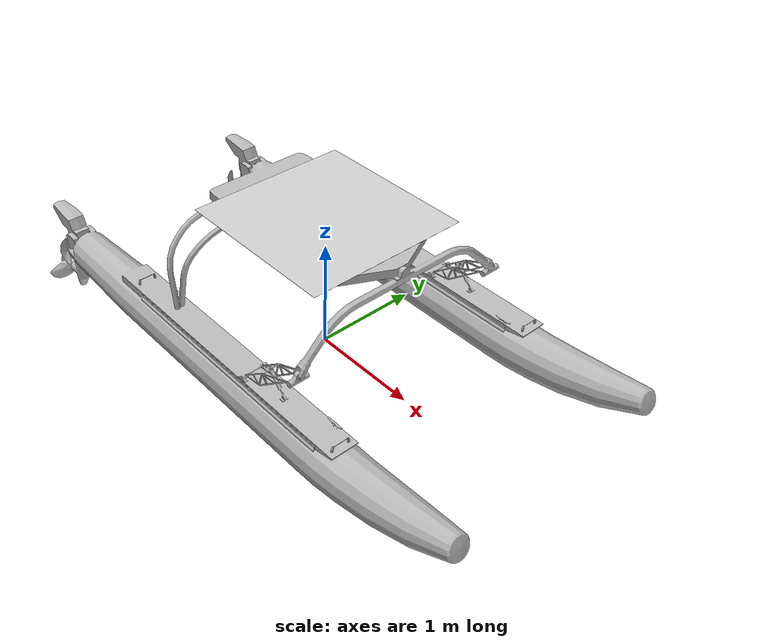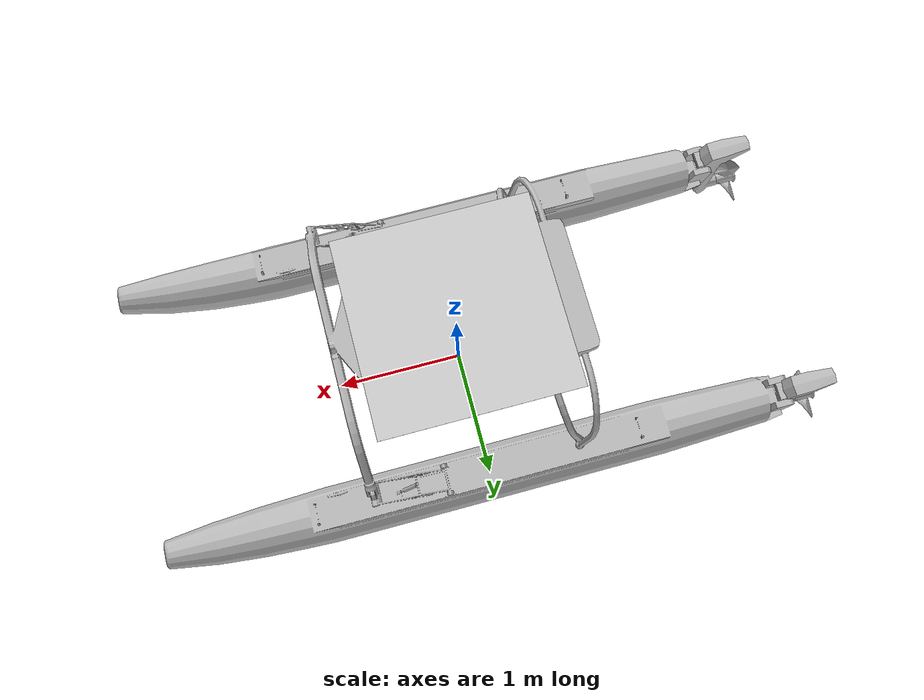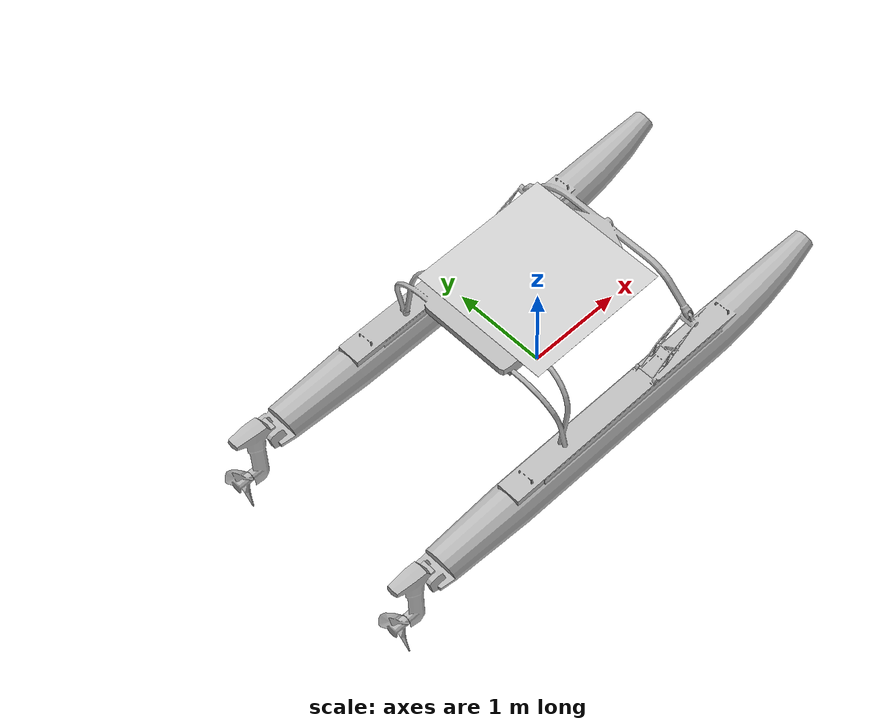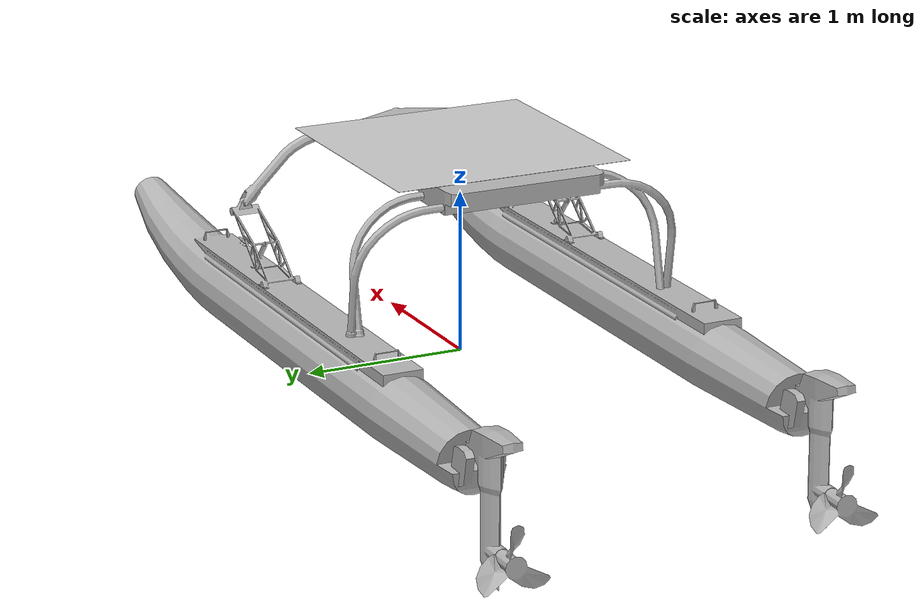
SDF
<?xml version='1.0'?>
<sdf version='1.7'>
  <model name='wam-v'>
    <enable_wind>true</enable_wind>

    <link name="base_link">
      <visual name="visual">
        <geometry>
          <mesh>
            <uri>model://wam-v/meshes/WAM-V-Base.dae</uri>
          </mesh>
        </geometry>
      </visual>
      <collision name="collision">
        <geometry>
          <mesh>
            <uri>model://wam-v/meshes/wam-v-base_collision_406.stl</uri>
          </mesh>
        </geometry>
      </collision>
      <inertial>
        <pose>0 0 0 0 0 0</pose>
        <mass>180</mass>
        <inertia>
          <ixx>120</ixx>
          <ixy>0</ixy>
          <iyy>393</iyy>
          <iyz>0</iyz>
          <izz>446</izz>
        </inertia>
      </inertial>
    </link>

    <!-- ======================== ARUCO PANEL ======================== -->
    <link name='aruco_panel_link'>
      <!-- 相對 base_link 的位置，可自行微調 -->
      <pose relative_to="base_link">0 0 1.3 0 0 -1.570796</pose>

      <inertial>
        <pose>0 0 0 0 0 0</pose>
        <mass>1.0</mass>
        <inertia>
          <ixx>0.1875</ixx>
          <ixy>0</ixy>
          <ixz>0</ixz>
          <iyy>0.1875</iyy>
          <iyz>0</iyz>
          <izz>0.375</izz>
        </inertia>
      </inertial>

      <collision name='aruco_coll'>
        <geometry>
          <box>
            <size>1.5 1.5 0.01</size>
          </box>
        </geometry>
      </collision>

      <visual name="aruco_visual">
        <pose>0 0 0 0 0 0</pose>
        <cast_shadows>false</cast_shadows>
        <geometry>
          <plane>
            <normal>0 0 1</normal>
            <size>1.5 1.5</size>
          </plane>
        </geometry>
        <material>
          <ambient>0.8 0.8 0.8 1</ambient>
          <diffuse>0.8 0.8 0.8 1</diffuse>
          <specular>0.1 0.1 0.1 1</specular>
          <pbr>
            <metal>
              <albedo_map>materials/textures/aruco_04.png</albedo_map>
              <roughness>0.6</roughness>
              <metalness>0</metalness>
            </metal>
          </pbr>
        </material>
      </visual>
    </link>

    <joint name="aruco_panel_joint" type="fixed">
      <parent>base_link</parent>
      <child>aruco_panel_link</child>
    </joint>

    <link name="left_engine_link">
      <pose>-2.373776 1.027135 0.318237 0 0 0</pose>
      <visual name="visual">
        <geometry>
          <mesh>
            <uri>model://wam-v/meshes/engine.dae</uri>
          </mesh>
        </geometry>
      </visual>
      <collision name="engine_vertical_axis_collision">
        <pose>-0.16 0 -0.215 0 0 0</pose>
        <geometry>
          <box>
            <size>0.2 0.1 0.83</size>
          </box>
        </geometry>
      </collision>
      <collision name="engine_rear_end_collision">
        <pose>-0.34 0 0.12 0 0 0</pose>
        <geometry>
          <box>
            <size>0.12 0.15 0.12</size>
          </box>
        </geometry>
      </collision>
      <inertial>
        <mass>15</mass>
        <inertia>
          <ixx>0.88924</ixx>
          <ixy>0</ixy>
          <iyy>0.911125</iyy>
          <iyz>0</iyz>
          <izz>0.078125</izz>
        </inertia>
      </inertial>
    </link>
    <joint name="left_engine_joint" type="revolute">
      <parent>base_link</parent>
      <child>left_engine_link</child>
      <axis>
        <xyz>0 0 1</xyz>
        <limit>
          <lower>-1.570796</lower>
          <upper>1.570796</upper>
        </limit>
        <dynamics>
          <damping>0.05</damping>
        </dynamics>
      </axis>
    </joint>

    <link name="right_engine_link">
      <pose>-2.373776 -1.027135 0.318237 0 0 0</pose>
      <visual name="visual">
        <geometry>
          <mesh>
            <uri>model://wam-v/meshes/engine.dae</uri>
          </mesh>
        </geometry>
      </visual>
      <collision name="engine_vertical_axis_collision">
        <pose>-0.16 0 -0.215 0 0 0</pose>
        <geometry>
          <box>
            <size>0.2 0.1 0.83</size>
          </box>
        </geometry>
      </collision>
      <collision name="engine_rear_end_collision">
        <pose>-0.34 0 0.12 0 0 0</pose>
        <geometry>
          <box>
            <size>0.12 0.15 0.12</size>
          </box>
        </geometry>
      </collision>
      <inertial>
        <mass>15</mass>
        <inertia>
          <ixx>0.88924</ixx>
          <ixy>0</ixy>
          <iyy>0.911125</iyy>
          <iyz>0</iyz>
          <izz>0.078125</izz>
        </inertia>
      </inertial>
    </link>
    <joint name="right_engine_joint" type="revolute">
      <parent>base_link</parent>
      <child>right_engine_link</child>
      <axis>
        <xyz>0 0 1</xyz>
        <limit>
          <lower>-1.570796</lower>
          <upper>1.570796</upper>
        </limit>
        <dynamics>
          <damping>0.05</damping>
        </dynamics>
      </axis>
    </joint>

    <link name="left_propeller_link">
      <pose relative_to="left_propeller_joint">0 0 0 0 0 0</pose>
      <visual name="visual">
        <geometry>
          <mesh>
            <uri>model://wam-v/meshes/propeller.dae</uri>
          </mesh>
        </geometry>
      </visual>
      <collision name="collision">
        <pose>-0.11 0 0 0 1.570796 0</pose>
        <geometry>
          <cylinder>
            <length>0.08</length>
            <radius>0.24</radius>
          </cylinder>
        </geometry>
      </collision>
      <inertial>
        <mass>0.5</mass>
        <inertia>
          <ixx>0.008545</ixx>
          <ixy>0</ixy>
          <iyy>0.008545</iyy>
          <iyz>0</iyz>
          <izz>0.0144</izz>
        </inertia>
      </inertial>
    </link>
    <joint name="left_propeller_joint" type="revolute">
      <pose relative_to="left_engine_link">-0.278156 0 -0.509371 0 0 0</pose>
      <parent>left_engine_link</parent>
      <child>left_propeller_link</child>
      <axis>
        <xyz>1 0 0</xyz>
        <dynamics>
          <damping>0.01</damping>
        </dynamics>
        <limit>
          <lower>-1e+16</lower>
          <upper>1e+16</upper>
        </limit>
      </axis>
    </joint>

    <link name="right_propeller_link">
      <pose relative_to="right_propeller_joint">0 0 0 0 0 0</pose>
      <visual name="visual">
        <geometry>
          <mesh>
            <uri>model://wam-v/meshes/propeller.dae</uri>
          </mesh>
        </geometry>
      </visual>
      <collision name="collision">
        <pose>-0.11 0 0 0 1.570796 0</pose>
        <geometry>
          <cylinder>
            <length>0.08</length>
            <radius>0.24</radius>
          </cylinder>
        </geometry>
      </collision>
      <inertial>
        <mass>0.5</mass>
        <inertia>
          <ixx>0.008545</ixx>
          <ixy>0</ixy>
          <iyy>0.008545</iyy>
          <iyz>0</iyz>
          <izz>0.0144</izz>
        </inertia>
      </inertial>
    </link>
    <joint name="right_propeller_joint" type="revolute">
      <pose relative_to="right_engine_link">-0.278156 0 -0.509371 0 0 0</pose>
      <parent>right_engine_link</parent>
      <child>right_propeller_link</child>
      <axis>
        <xyz>1 0 0</xyz>
        <dynamics>
          <damping>0.01</damping>
        </dynamics>
        <limit>
          <lower>-1e+16</lower>
          <upper>1e+16</upper>
        </limit>
      </axis>
    </joint>

    <!-- Sensors -->
    <link name="imu_link">
      <inertial>
        <pose>0 0 0 0 0 0</pose>
        <mass>0.15</mass>
        <inertia>
          <ixx>0.00001</ixx>
          <ixy>0</ixy>
          <ixz>0</ixz>
          <iyy>0.00002</iyy>
          <iyz>0</iyz>
          <izz>0.00002</izz>
        </inertia>
      </inertial>
      <sensor name="imu_sensor" type="imu">
        <pose>0 0 0 3.141593 0 0</pose>
        <always_on>1</always_on>
        <update_rate>1000.0</update_rate>
      </sensor>
    </link>
    <joint name="imu_joint" type="revolute">
      <child>imu_link</child>
      <parent>base_link</parent>
      <axis>
        <xyz>0 0 1</xyz>
        <limit>
          <lower>0</lower>
          <upper>0</upper>
          <effort>0</effort>
          <velocity>0</velocity>
        </limit>
        <dynamics>
          <damping>1.0</damping>
        </dynamics>
      </axis>
    </joint>

    <!-- Joint state and force plugins -->
    <plugin filename="gz-sim-joint-state-publisher-system"
      name="gz::sim::systems::JointStatePublisher">
    </plugin>
    <plugin filename="gz-sim-apply-joint-force-system"
      name="gz::sim::systems::ApplyJointForce">
      <joint_name>left_engine_joint</joint_name>
    </plugin>
    <plugin filename="gz-sim-apply-joint-force-system"
      name="gz::sim::systems::ApplyJointForce">
      <joint_name>right_engine_joint</joint_name>
    </plugin>

    <!-- Thruster plugins -->
    <plugin
        filename="gz-sim-thruster-system"
        name="gz::sim::systems::Thruster">
      <namespace>wam-v</namespace>
      <joint_name>left_propeller_joint</joint_name>
      <use_angvel_cmd>0</use_angvel_cmd>
      <fluid_density>1000</fluid_density>
      <propeller_diameter>0.48</propeller_diameter>
      <thrust_coefficient>0.01</thrust_coefficient>
      <velocity_control>1</velocity_control>
      <max_thrust_cmd>2000.0</max_thrust_cmd>
      <min_thrust_cmd>-2000.0</min_thrust_cmd>
    </plugin>
    <plugin
        filename="gz-sim-thruster-system"
        name="gz::sim::systems::Thruster">
      <namespace>wam-v</namespace>
      <joint_name>right_propeller_joint</joint_name>
      <use_angvel_cmd>0</use_angvel_cmd>
      <fluid_density>1000</fluid_density>
      <propeller_diameter>0.48</propeller_diameter>
      <thrust_coefficient>0.01</thrust_coefficient>
      <velocity_control>1</velocity_control>
      <max_thrust_cmd>2000.0</max_thrust_cmd>
      <min_thrust_cmd>-2000.0</min_thrust_cmd>
    </plugin>

    <!-- Hydrodynamics plugin -->
    <plugin
        filename="gz-waves1-hydrodynamics-system"
        name="gz::sim::systems::Hydrodynamics">

        <enable>wam-v::base_link</enable>

        <hydrodynamics>
          <damping_on>1</damping_on>
          <viscous_drag_on>1</viscous_drag_on>
          <pressure_drag_on>1</pressure_drag_on>

          <!-- Linear and Angular Damping -->
          <cDampL1>1.0E-6</cDampL1>
          <cDampL2>1.0E-6</cDampL2>
          <cDampR1>1.0E-6</cDampR1>
          <cDampR2>1.0E-6</cDampR2>

          <!-- 'Pressure' Drag -->
          <cPDrag1>1.0E+2</cPDrag1>
          <cPDrag2>1.0E+2</cPDrag2>
          <fPDrag>0.4</fPDrag>
          <cSDrag1>1.0E+2</cSDrag1>
          <cSDrag2>1.0E+2</cSDrag2>
          <fSDrag>0.4</fSDrag>
          <vRDrag>1.0</vRDrag>
        </hydrodynamics>
    </plugin>

    <!-- ArduPilot plugin -->
    <plugin name="ArduPilotPlugin" filename="ArduPilotPlugin">
      <fdm_addr>127.0.0.1</fdm_addr>
      <fdm_port_in>9022</fdm_port_in>
      <connectionTimeoutMaxCount>5</connectionTimeoutMaxCount>
      <lock_step>1</lock_step>
      <modelXYZToAirplaneXForwardZDown>0 0 0 3.141593 0 0</modelXYZToAirplaneXForwardZDown>
      <gazeboXYZToNED>0 0 0 3.141593 0 1.57079632</gazeboXYZToNED>
      <imuName>imu_sensor</imuName>

      <!--
        SERVO1_FUNCTION 26 (GroundSteering)
      -->
      <control channel="0">
        <jointName>left_engine_joint</jointName>
        <useForce>1</useForce>
        <multiplier>3.1415926</multiplier>
        <offset>-0.5</offset>
        <servo_min>1000</servo_min>
        <servo_max>2000</servo_max>
        <type>POSITION</type>
        <p_gain>500.0</p_gain>
        <i_gain>0</i_gain>
        <d_gain>10</d_gain>
        <i_max>-1</i_max>
        <i_min>0</i_min>
        <cmd_max>5000.0</cmd_max>
        <cmd_min>-5000.0</cmd_min>
      </control>
      <control channel="0">
        <jointName>right_engine_joint</jointName>
        <useForce>1</useForce>
        <multiplier>3.1415926</multiplier>
        <offset>-0.5</offset>
        <servo_min>1000</servo_min>
        <servo_max>2000</servo_max>
        <type>POSITION</type>
        <p_gain>500.0</p_gain>
        <i_gain>0</i_gain>
        <d_gain>10</d_gain>
        <i_max>-1</i_max>
        <i_min>0</i_min>
        <cmd_max>5000.0</cmd_max>
        <cmd_min>-5000.0</cmd_min>
      </control>

      <!--
        SERVO3_FUNCTION 70 (Throttle)

        max thrust: +/- 1500 N (larger than VRX settings of +250 N / -100 N)
      -->
      <control channel="2">
        <jointName>left_propeller_joint</jointName>
        <useForce>1</useForce>
        <multiplier>3000</multiplier>
        <offset>-0.5</offset>
        <servo_min>1000</servo_min>
        <servo_max>2000</servo_max>
        <type>COMMAND</type>
        <cmd_topic>/model/wam-v/joint/left_propeller_joint/cmd_thrust</cmd_topic>
      </control>
      <control channel="2">
        <jointName>right_propeller_joint</jointName>
        <useForce>1</useForce>
        <multiplier>3000</multiplier>
        <offset>-0.5</offset>
        <servo_min>1000</servo_min>
        <servo_max>2000</servo_max>
        <type>COMMAND</type>
        <cmd_topic>/model/wam-v/joint/right_propeller_joint/cmd_thrust</cmd_topic>
      </control>
    </plugin>

  </model>
</sdf>
